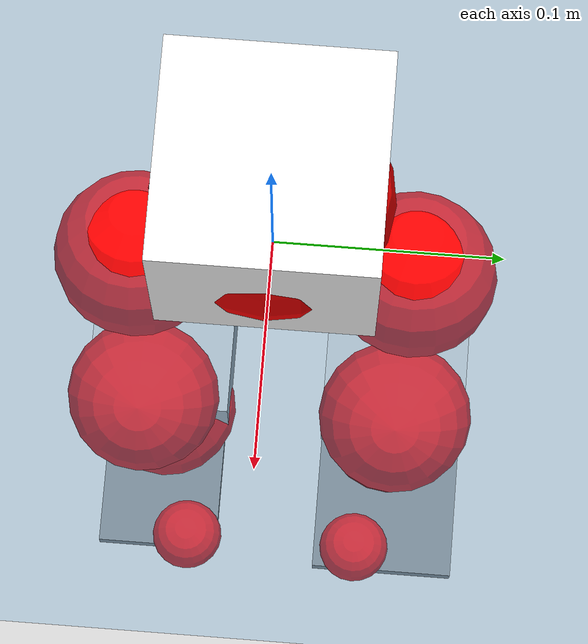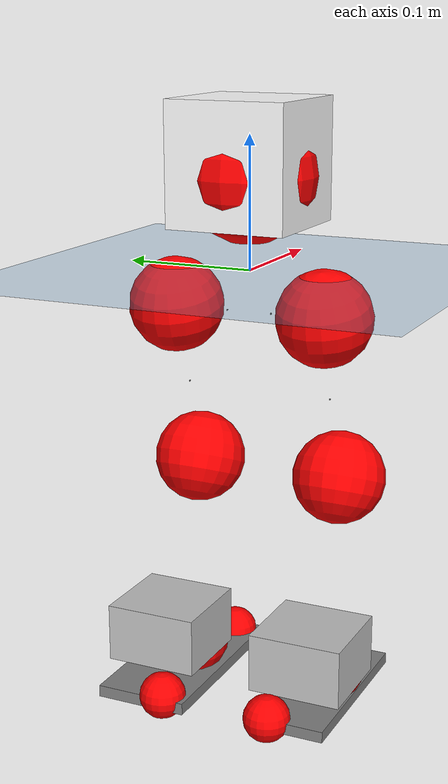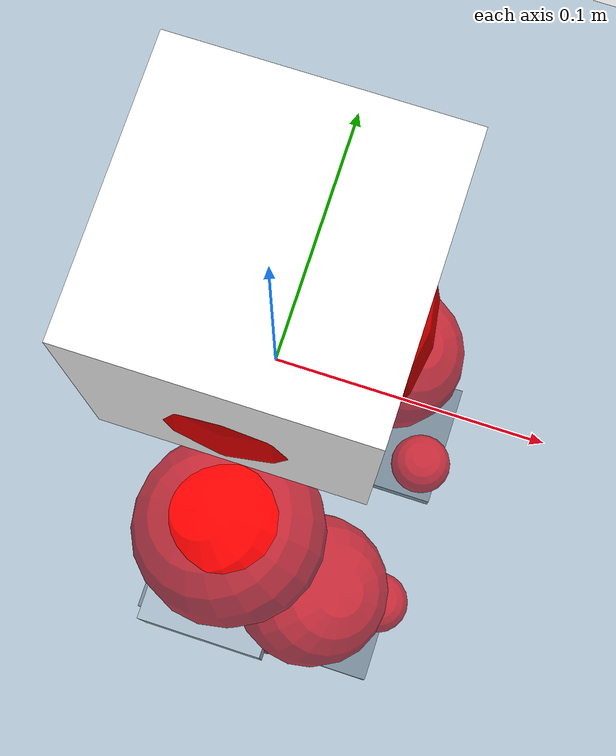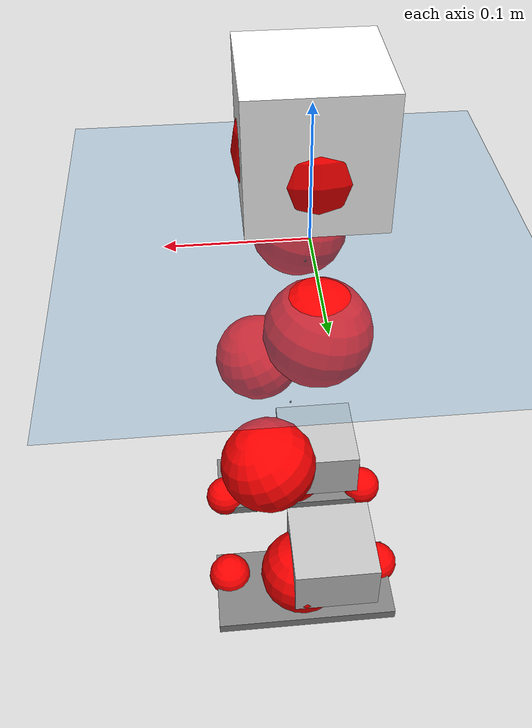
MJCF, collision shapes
<mujoco model="pi_12dof_release_v1">
  <compiler angle="radian" assetdir="assets" balanceinertia="true" inertiafromgeom="false"/>

  <option timestep="0.005" density="1.2" viscosity="2e-05"/>

  <size nkey="1"/>

  <visual>
    <quality shadowsize="8192"/>
    <map shadowclip="0.5"/>
  </visual>

  <default>
    <default class="/">
      <joint armature="0.01" damping="0.01" frictionloss="0.01"/>
      <geom contype="0" conaffinity="0" group="1" solref="-1000 -80"/>
      <site size="0.01 0.005 0.005" group="5"/>
      <general forcelimited="true" biastype="affine" gainprm="20" biasprm="0 -20 -0.5"/>
      <default class="foot">
        <geom size="0.0845 0.036 0.005" type="box" condim="6" group="4" priority="1" friction="0.9 0.2 0.2" solimp="0.015 1 0.005"/>
      </default>
      <default class="reward_collision_sphere">
        <geom group="5" rgba="1 0 0 1"/>
      </default>
    </default>
  </default>

  <asset>
    <texture type="skybox" colorspace="auto" name="//unnamed_texture_0" builtin="gradient" rgb1="0.95 0.95 0.95" rgb2="0.95 0.95 0.95" width="100" height="600"/>
    <texture type="2d" colorspace="auto" name="texplane" builtin="checker" rgb1="0.345 0.575 0.748" rgb2="0.345 0.575 0.748" markrgb="1 1 1" width="512" height="512"/>
    <material name="MatPlane" class="/" texture="texplane" texuniform="true" texrepeat="2 2" specular="0.9"/>
    <mesh name="baselink_1" class="/" file="baselink_1.STL"/>
    <mesh name="r_hip_pitch_link" class="/" file="r_hip_pitch_link.STL"/>
    <mesh name="r_hip_roll_link" class="/" file="r_hip_roll_link.STL"/>
    <mesh name="r_thigh_link" class="/" file="r_thigh_link.STL"/>
    <mesh name="r_calf_link" class="/" file="r_calf_link.STL"/>
    <mesh name="r_ankle_pitch_link" class="/" file="r_ankle_pitch_link.STL"/>
    <mesh name="r_ankle_roll_link" class="/" file="r_ankle_roll_link.STL"/>
    <mesh name="l_hip_pitch_link" class="/" file="l_hip_pitch_link.STL"/>
    <mesh name="l_hip_roll_link" class="/" file="l_hip_roll_link.STL"/>
    <mesh name="l_thigh_link" class="/" file="l_thigh_link.STL"/>
    <mesh name="l_calf_link" class="/" file="l_calf_link.STL"/>
    <mesh name="l_ankle_pitch_link" class="/" file="l_ankle_pitch_link.STL"/>
    <mesh name="l_ankle_roll_link" class="/" file="l_ankle_roll_link.STL"/>
  </asset>

  <worldbody>
    <geom name="floor" class="/" size="100 100 0.125" type="plane" group="0" material="MatPlane"/>
    <light name="toplight_shadow" class="/" pos="0 0 5" dir="0.0990148 0.0990148 -0.990148" type="directional" ambient="0.04 0.04 0.04" diffuse="0.55 0.55 0.55" specular="0.12 0.12 0.12"/>
    <light name="toplight_fill" class="/" pos="0 0 5" dir="0.0990148 0.0990148 -0.990148" type="directional" castshadow="false" ambient="0.04 0.04 0.04" diffuse="0.3 0.3 0.3" specular="0.08 0.08 0.08"/>
    <body name="trunk" pos="0.000708298 0.000337789 0.000840854" quat="1 0.000396776 0.000191422 3.06548e-05">
      <inertial pos="0.00317519 -0.00130425 0.0398517" quat="0.694259 0.00973268 0.0095536 0.719596" mass="1.70215" diaginertia="0.00982803 0.00259069 0.00407864"/>
      <joint name="//unnamed_joint_0" type="free"/>
      <geom name="//unnamed_geom_1" class="/" type="mesh" density="0" rgba="1 1 1 1" mesh="baselink_1"/>
      <geom name="//unnamed_geom_2" class="/" size="0.046155 0.046155 0.046155" pos="0 0 0.0793726" type="box" rgba="1 1 1 1"/>
      <geom name="//unnamed_geom_3" class="reward_collision_sphere" size="0.0507705" pos="0 0 0.069451"/>
      <site name="imu" class="/" pos="-0.00452938 -0.00571871 0.00128796" size="0.009231"/>
      <camera name="track" class="/" pos="0 -1.55893 0" quat="0.707107 0.707107 0 0" mode="trackcom"/>
      <camera name="ego_camera" class="/" pos="0.0748258 0 0.178588" quat="-0.5 -0.5 0.5 0.5"/>
      <body name="r_hip_pitch_link" pos="-6.33714e-05 -0.0175522 -0.0324194" quat="0.992151 -0.000145538 -0.125045 0.000114403">
        <inertial pos="0.00196707 -0.0435765 -0.000206142" quat="-0.0166889 0.706109 -0.0260404 0.707427" mass="0.292997" diaginertia="0.000108 2.83511e-05 7.94904e-05"/>
        <joint name="r_hip_pitch_joint" class="/" pos="0 0 0" axis="0.000697612 -0.999998 0.00162893" range="-1.74944 1.24867" armature="0.00963398" damping="0.0164505" frictionloss="0.00932873"/>
        <geom name="//unnamed_geom_4" class="/" type="mesh" density="0" rgba="0.75294 0.75294 0.75294 1" mesh="r_hip_pitch_link"/>
        <geom name="//unnamed_geom_5" class="/" size="0.00046155 0.00046155 0.00046155" type="box" rgba="0.75294 0.75294 0.75294 1"/>
        <body name="r_hip_roll_link" pos="0.000251361 -0.043158 4.09114e-05" quat="1 1.99662e-06 -4.09271e-05 -0.000103226">
          <inertial pos="-0.00135806 -0.000726554 -0.0622688" quat="0.705887 -0.078307 -0.0825336 0.699128" mass="0.302596" diaginertia="0.000331 8.06175e-05 0.000123777"/>
          <joint name="r_hip_roll_joint" class="/" pos="0 0 0" axis="-0.999995 0.0029454 0.00126441" range="-0.117713 0.503486" armature="0.0091461" damping="0.00556968" frictionloss="0.00925574"/>
          <geom name="//unnamed_geom_6" class="/" type="mesh" density="0" rgba="0.75294 0.75294 0.75294 1" mesh="r_hip_roll_link"/>
          <geom name="//unnamed_geom_7" class="/" size="0.00046155 0.00046155 0.00046155" type="box" rgba="0.75294 0.75294 0.75294 1"/>
          <geom name="//unnamed_geom_8" class="reward_collision_sphere" size="0.036924"/>
          <body name="r_thigh_link" pos="0.00104682 0.00168357 -0.0690896" quat="1 -4.84098e-05 -7.08795e-06 -2.21414e-05">
            <inertial pos="4.98877e-05 0.0017251 -0.0481084" quat="0.737528 0.675316 -0.00010941 0.000171387" mass="0.0892001" diaginertia="0.000122476 2.71187e-05 5.5723e-05"/>
            <joint name="r_thigh_joint" class="/" pos="0 0 0" axis="0.00253837 -0.000283116 -0.999997" range="-0.298615 0.588507" armature="0.00946765" damping="0.00458029" frictionloss="0.00869031"/>
            <geom name="//unnamed_geom_9" class="/" type="mesh" density="0" rgba="0.75294 0.75294 0.75294 1" mesh="r_thigh_link"/>
            <geom name="//unnamed_geom_10" class="/" size="0.00046155 0.00046155 0.00046155" type="box" rgba="0.75294 0.75294 0.75294 1"/>
            <body name="r_calf_link" pos="-0.00145416 -0.00268398 -0.0691667" quat="0.94765 4.07425e-07 0.31931 -9.80694e-08">
              <inertial pos="-0.00033785 0.000256805 -0.0691578" quat="0.999983 -0.00405221 0.00185476 0.00370329" mass="0.646151" diaginertia="0.00354591 0.00100799 0.000170169"/>
              <joint name="r_calf_joint" class="/" pos="0 0 0" axis="0.0014298 -0.999999 -0.000602709" range="-1.64392 0.64812" armature="0.00946335" damping="0.00927304" frictionloss="0.00922325"/>
              <geom name="//unnamed_geom_11" class="/" type="mesh" density="0" rgba="0.75294 0.75294 0.75294 1" mesh="r_calf_link"/>
              <geom name="//unnamed_geom_12" class="/" size="0.00046155 0.00046155 0.00046155" type="box" rgba="0.75294 0.75294 0.75294 1"/>
              <geom name="//unnamed_geom_13" class="reward_collision_sphere" size="0.036924"/>
              <body name="r_ankle_pitch_link" pos="7.16426e-05 -8.87457e-05 -0.138561" quat="0.980067 1.20787e-08 -0.198669 2.86386e-07">
                <inertial pos="0.00463662 0.00282664 -0.000989016" quat="-0.0030583 0.705109 -0.00376907 0.709083" mass="0.139457" diaginertia="0.000309643 6.42438e-05 0.000115929"/>
                <joint name="r_ankle_pitch_joint" class="/" pos="0 0 0" axis="-0.00224809 -0.999996 -0.00155144" stiffness="2.04555e-05" range="-1.30112 0.520214" armature="0.00924797" damping="0.0075529" frictionloss="0.00924696"/>
                <geom name="//unnamed_geom_14" class="/" type="mesh" density="0" rgba="0.75294 0.75294 0.75294 1" mesh="r_ankle_pitch_link"/>
                <geom name="//unnamed_geom_15" class="/" size="0.0360009 0.036924 0.0230775" type="box" rgba="0.75294 0.75294 0.75294 1"/>
                <body name="r_ankle_roll_link" pos="0.0764731 0.00288223 0.000249346" quat="1 7.21419e-06 8.43063e-06 -7.70889e-05">
                  <inertial pos="-0.0237454 -0.000235604 -0.0132653" quat="0.558226 0.42785 0.436232 0.561275" mass="0.403969" diaginertia="0.00109372 0.000296004 0.000267056"/>
                  <joint name="r_ankle_roll_joint" class="/" pos="0 0 0" axis="-0.999996 -0.000998588 0.00267384" range="-0.169118 0.150902" armature="0.00894264" damping="0.00421718" frictionloss="0.00964861"/>
                  <geom name="//unnamed_geom_16" class="/" type="mesh" density="0" rgba="0.75294 0.75294 0.75294 1" mesh="r_ankle_roll_link"/>
                  <geom name="//unnamed_geom_17" class="/" type="mesh" rgba="0.75294 0.75294 0.75294 1" mesh="r_ankle_roll_link"/>
                  <geom name="right_foot" class="foot" size="0.0722659 0.0314407 0.00445817" pos="-0.0508816 0 -0.0436549"/>
                  <geom name="//unnamed_geom_19" class="reward_collision_sphere" size="0.036924" pos="-0.0498839 0 -0.0198431"/>
                  <geom name="//unnamed_geom_20" class="reward_collision_sphere" size="0.018462" pos="0.0149652 0.0155893 -0.0396863"/>
                  <geom name="//unnamed_geom_21" class="reward_collision_sphere" size="0.018462" pos="-0.119721 0.0155893 -0.0396863"/>
                  <site name="right_foot" class="foot" pos="-0.0508816 0 -0.0436549" size="0.009231"/>
                </body>
              </body>
            </body>
          </body>
        </body>
      </body>
      <body name="l_hip_pitch_link" pos="-2.98235e-05 0.0186814 -0.0327915" quat="0.992205 3.29902e-05 -0.124614 -0.000112973">
        <inertial pos="0.000747525 0.041848 -0.000390663" quat="-0.0390341 0.705277 0.0283741 0.707288" mass="0.307156" diaginertia="0.0001266 3.04883e-05 9.63765e-05"/>
        <joint name="l_hip_pitch_joint" class="/" pos="0 0 0" axis="-0.00423419 0.99999 -0.00165433" range="-1.25875 1.74774" armature="0.00897247" damping="0.0130586" frictionloss="0.00905078"/>
        <geom name="//unnamed_geom_22" class="/" type="mesh" density="0" rgba="0.75294 0.75294 0.75294 1" mesh="l_hip_pitch_link"/>
        <geom name="//unnamed_geom_23" class="/" size="0.00046155 0.00046155 0.00046155" type="box" rgba="0.75294 0.75294 0.75294 1"/>
        <body name="l_hip_roll_link" pos="0.000684326 0.043275 0.000551646" quat="1 -6.39661e-06 -2.72082e-06 -4.67789e-06">
          <inertial pos="-0.00110111 0.000475895 -0.0620056" quat="0.699637 -0.0744539 -0.0785157 0.706258" mass="0.301639" diaginertia="0.000324766 7.92319e-05 0.000122169"/>
          <joint name="l_hip_roll_joint" class="/" pos="0 0 0" axis="-0.999999 -0.000781999 0.000712592" range="-0.513432 0.107363" armature="0.00951695" damping="0" frictionloss="0.00921575"/>
          <geom name="//unnamed_geom_24" class="/" type="mesh" density="0" rgba="0.75294 0.75294 0.75294 1" mesh="l_hip_roll_link"/>
          <geom name="//unnamed_geom_25" class="/" size="0.00046155 0.00046155 0.00046155" type="box" rgba="0.75294 0.75294 0.75294 1"/>
          <geom name="//unnamed_geom_26" class="reward_collision_sphere" size="0.036924"/>
          <body name="l_thigh_link" pos="0.00098296 -0.00126826 -0.068203" quat="1 -4.22277e-05 0.000154577 5.43676e-05">
            <inertial pos="-0.000420146 -0.000572139 -0.0481719" quat="0.674601 0.738181 -3.34717e-05 0.0013778" mass="0.0892315" diaginertia="0.000123633 2.7053e-05 5.57516e-05"/>
            <joint name="l_thigh_joint" class="/" pos="0 0 0" axis="5.65299e-05 -0.000366623 -1" range="-0.597892 0.314815" armature="0.00919715" damping="0.00343427" frictionloss="0.00913759"/>
            <geom name="//unnamed_geom_27" class="/" type="mesh" density="0" rgba="0.75294 0.75294 0.75294 1" mesh="l_thigh_link"/>
            <geom name="//unnamed_geom_28" class="/" size="0.00046155 0.00046155 0.00046155" type="box" rgba="0.75294 0.75294 0.75294 1"/>
            <body name="l_calf_link" pos="-0.000199613 -8.03692e-05 -0.0701107" quat="0.947648 -6.74437e-06 0.319317 -2.30865e-06">
              <inertial pos="0.000433014 0.00228029 -0.0691805" quat="0.999983 0.00339939 -0.000156978 0.00480594" mass="0.62762" diaginertia="0.0034204 0.00098907 0.000165804"/>
              <joint name="l_calf_joint" class="/" pos="0 0 0" axis="6.77656e-05 1 1.00243e-05" range="-0.629809 1.65938" armature="0.00924992" damping="0.00719418" frictionloss="0.00917378"/>
              <geom name="//unnamed_geom_29" class="/" type="mesh" density="0" rgba="0.75294 0.75294 0.75294 1" mesh="l_calf_link"/>
              <geom name="//unnamed_geom_30" class="/" size="0.00046155 0.00046155 0.00046155" type="box" rgba="0.75294 0.75294 0.75294 1"/>
              <geom name="//unnamed_geom_31" class="reward_collision_sphere" size="0.036924"/>
              <body name="l_ankle_pitch_link" pos="0.000123339 0.000966335 -0.138746" quat="0.980068 -2.35399e-05 -0.198665 1.92959e-05">
                <inertial pos="0.00580932 -0.00155098 -6.34258e-05" quat="-0.00259961 0.706921 0.00200056 0.707285" mass="0.139261" diaginertia="0.000302318 6.4053e-05 0.000115083"/>
                <joint name="l_ankle_pitch_joint" class="/" pos="0 0 0" axis="-0.00078894 1 0.000169652" stiffness="1.772e-05" range="-0.51408 1.29472" armature="0.00939679" damping="0.00238059" frictionloss="0.00944607"/>
                <geom name="//unnamed_geom_32" class="/" type="mesh" density="0" rgba="0.75294 0.75294 0.75294 1" mesh="l_ankle_pitch_link"/>
                <geom name="//unnamed_geom_33" class="/" size="0.0360009 0.036924 0.0230775" type="box" rgba="0.75294 0.75294 0.75294 1"/>
                <body name="l_ankle_roll_link" pos="0.0754282 0.000551458 -0.000515677" quat="1 0.000139165 -7.26112e-05 -1.02181e-05">
                  <inertial pos="-0.0242653 -0.00049845 -0.014343" quat="0.559901 0.429008 0.434989 0.559685" mass="0.415112" diaginertia="0.00112324 0.000300386 0.000274112"/>
                  <joint name="l_ankle_roll_joint" class="/" pos="0 0 0" axis="-0.999999 0.00118325 8.7599e-05" range="-0.151768 0.152737" armature="0.00894386" damping="0.00931503" frictionloss="0.00920846"/>
                  <geom name="//unnamed_geom_34" class="/" type="mesh" density="0" rgba="0.75294 0.75294 0.75294 1" mesh="l_ankle_roll_link"/>
                  <geom name="//unnamed_geom_35" class="/" type="mesh" rgba="0.75294 0.75294 0.75294 1" mesh="l_ankle_roll_link"/>
                  <geom name="left_foot" class="foot" size="0.0774725 0.0370879 0.00471263" pos="-0.0508816 0 -0.0436549"/>
                  <geom name="//unnamed_geom_37" class="reward_collision_sphere" size="0.036924" pos="-0.0498839 0 -0.0198431"/>
                  <geom name="//unnamed_geom_38" class="reward_collision_sphere" size="0.018462" pos="0.0149652 -0.0155893 -0.0396863"/>
                  <geom name="//unnamed_geom_39" class="reward_collision_sphere" size="0.018462" pos="-0.119721 -0.0155893 -0.0396863"/>
                  <site name="left_foot" class="foot" pos="-0.0508816 0 -0.0436549" size="0.009231"/>
                </body>
              </body>
            </body>
          </body>
        </body>
      </body>
    </body>
  </worldbody>

  <contact>
    <pair class="/" geom1="floor" geom2="right_foot" name="//unnamed_contact_1"/>
    <pair class="/" geom1="floor" geom2="left_foot" name="//unnamed_contact_0"/>
  </contact>

  <actuator>
    <general name="r_hip_pitch_joint" class="/" joint="r_hip_pitch_joint" forcerange="-19.4114 19.4114" gainprm="18.4438" biasprm="0 -18.4438 -0.460748"/>
    <general name="r_hip_roll_joint" class="/" joint="r_hip_roll_joint" forcerange="-19.302 19.302" gainprm="18.4438" biasprm="0 -18.4438 -0.460748"/>
    <general name="r_thigh_joint" class="/" joint="r_thigh_joint" forcerange="-18.7655 18.7655" gainprm="18.4438" biasprm="0 -18.4438 -0.460748"/>
    <general name="r_calf_joint" class="/" joint="r_calf_joint" forcerange="-19.424 19.424" gainprm="18.4438" biasprm="0 -18.4438 -0.460748"/>
    <general name="r_ankle_pitch_joint" class="/" joint="r_ankle_pitch_joint" forcerange="-19.1698 19.1698" gainprm="18.4438" biasprm="0 -18.4438 -0.460748"/>
    <general name="r_ankle_roll_joint" class="/" joint="r_ankle_roll_joint" forcerange="-18.7248 18.7248" gainprm="18.4438" biasprm="0 -18.4438 -0.460748"/>
    <general name="l_hip_pitch_joint" class="/" joint="l_hip_pitch_joint" forcerange="-19.7973 19.7973" gainprm="18.4438" biasprm="0 -18.4438 -0.460748"/>
    <general name="l_hip_roll_joint" class="/" joint="l_hip_roll_joint" forcerange="-19.33 19.33" gainprm="18.4438" biasprm="0 -18.4438 -0.460748"/>
    <general name="l_thigh_joint" class="/" joint="l_thigh_joint" forcerange="-19.1277 19.1277" gainprm="18.4438" biasprm="0 -18.4438 -0.460748"/>
    <general name="l_calf_joint" class="/" joint="l_calf_joint" forcerange="-19.3269 19.3269" gainprm="18.4438" biasprm="0 -18.4438 -0.460748"/>
    <general name="l_ankle_pitch_joint" class="/" joint="l_ankle_pitch_joint" forcerange="-18.7132 18.7132" gainprm="18.4438" biasprm="0 -18.4438 -0.460748"/>
    <general name="l_ankle_roll_joint" class="/" joint="l_ankle_roll_joint" forcerange="-20.2923 20.2923" gainprm="18.4438" biasprm="0 -18.4438 -0.460748"/>
  </actuator>

  <sensor>
    <gyro site="imu" name="imu_angular_velocity"/>
    <velocimeter site="imu" name="imu_linear_velocity"/>
    <framelinvel objtype="site" objname="left_foot" name="left_foot_global_linear_velocity"/>
    <framelinvel objtype="site" objname="right_foot" name="right_foot_global_linear_velocity"/>
  </sensor>

  <keyframe>
    <key name="home" qpos="0 0 0.291 1 0 0 0 0.4 0 0 -0.8 0.4 0 -0.4 0 0 0.8 -0.4 0"/>
  </keyframe>
</mujoco>
